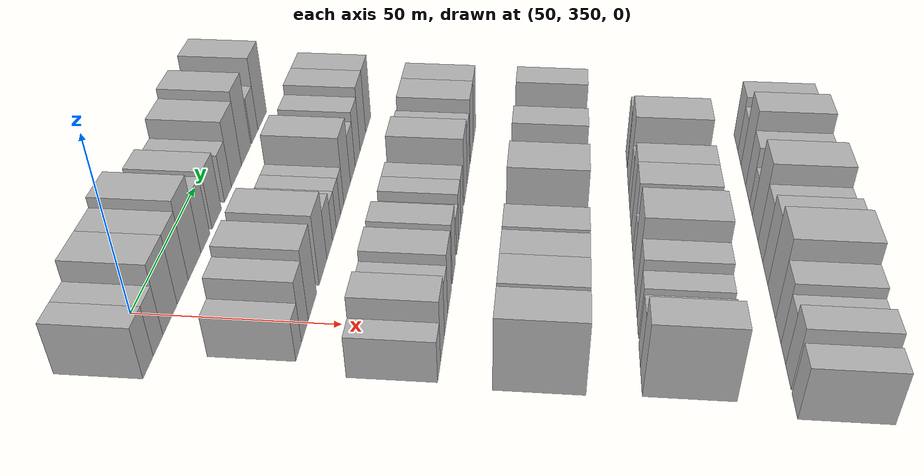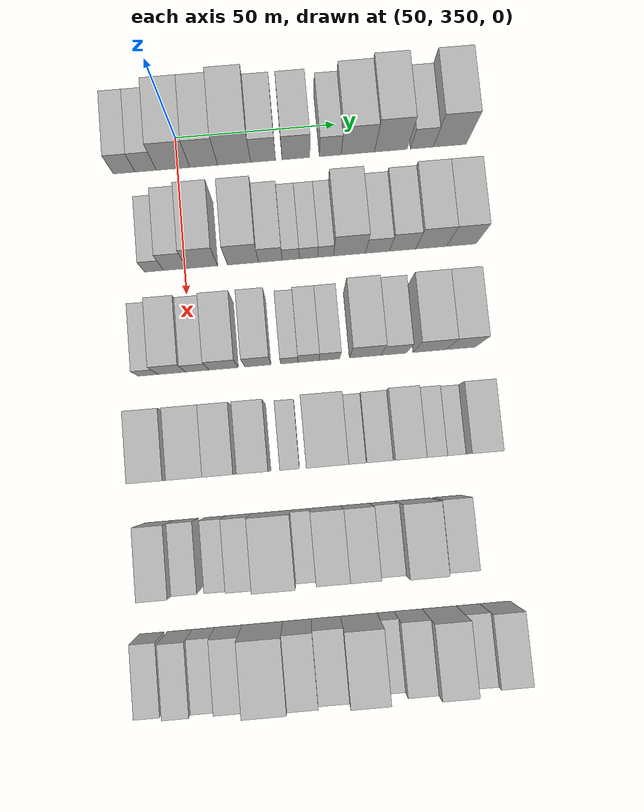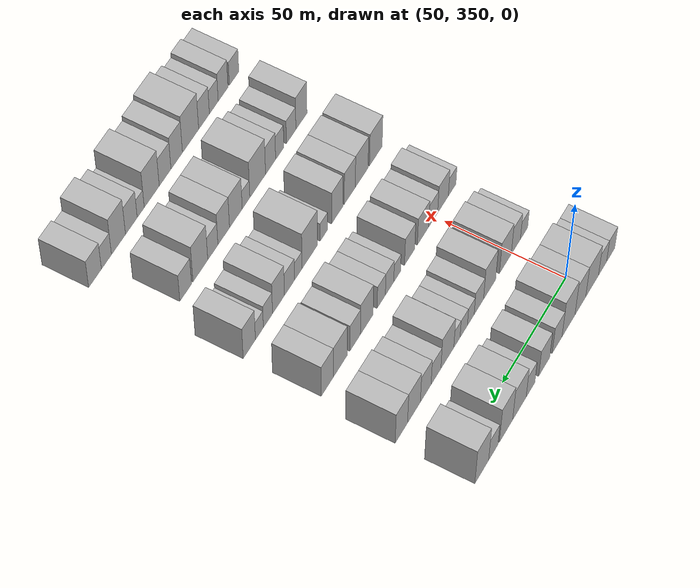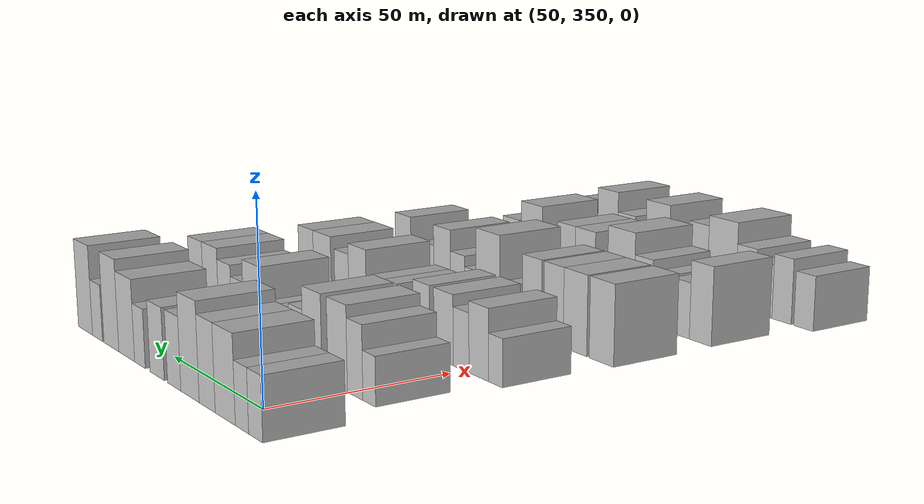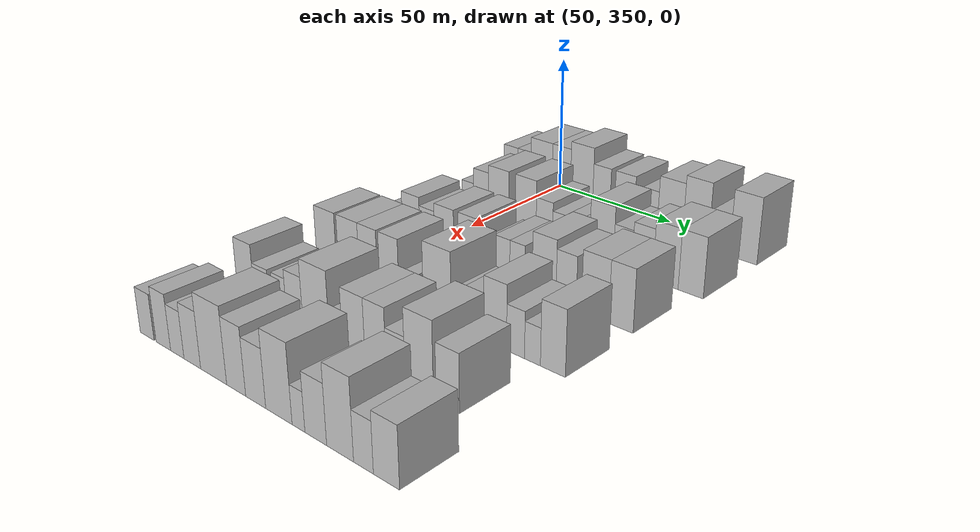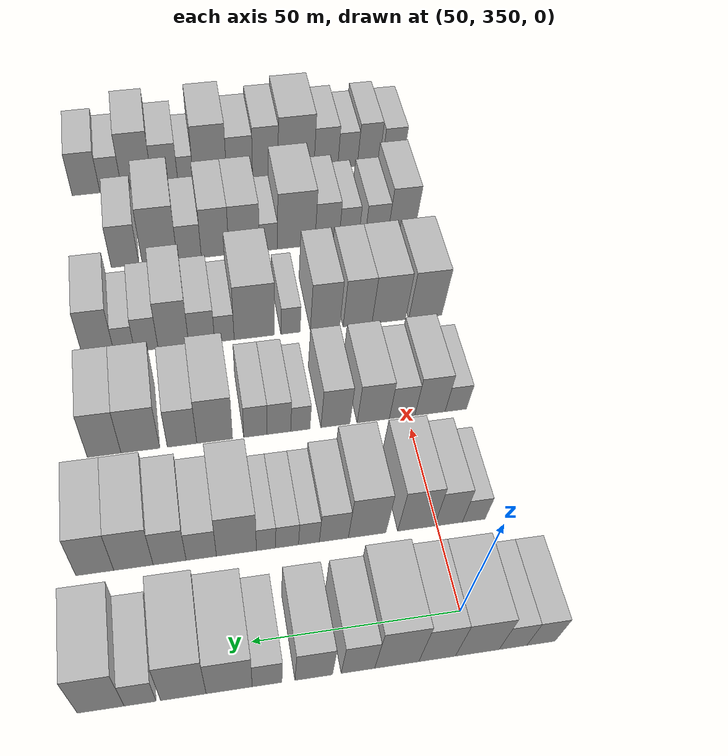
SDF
<sdf version="1.6">
 <world name="default">
  <model name="building_95">
   <static>1</static>
   <pose>50.0000 333.3479 0 0.000000 0.000000 0.000000</pose>
   <link name="link">
    <pose>0 0 7.50 0 0 0</pose>
    <collision name="collision"><geometry><box><size>20.0000 6.8034 15.0000</size></box></geometry></collision>
    <visual name="visual">
     <cast_shadows>0</cast_shadows>
     <geometry><box><size>20.0000 6.8034 15.0000</size></box></geometry>
     <material>
      <script>
       <uri>model://HANNAS_wall/materials/scripts</uri>
       <uri>model://HANNAS_wall/materials/textures</uri>
       <name>vrc/HANNAS_wall</name>
      </script>
     </material>
    </visual>
   </link>
  </model>
  <model name="building_96">
   <static>1</static>
   <pose>50.0000 340.0782 0 0.000000 0.000000 0.000000</pose>
   <link name="link">
    <pose>0 0 7.50 0 0 0</pose>
    <collision name="collision"><geometry><box><size>20.0000 6.6573 15.0000</size></box></geometry></collision>
    <visual name="visual">
     <cast_shadows>0</cast_shadows>
     <geometry><box><size>20.0000 6.6573 15.0000</size></box></geometry>
     <material>
      <script>
       <uri>model://HANNAS_wall/materials/scripts</uri>
       <uri>model://HANNAS_wall/materials/textures</uri>
       <name>vrc/HANNAS_wall</name>
      </script>
     </material>
    </visual>
   </link>
  </model>
  <model name="building_97">
   <static>1</static>
   <pose>50.0000 348.6228 0 0.000000 0.000000 0.000000</pose>
   <link name="link">
    <pose>0 0 10.50 0 0 0</pose>
    <collision name="collision"><geometry><box><size>20.0000 10.4319 21.0000</size></box></geometry></collision>
    <visual name="visual">
     <cast_shadows>0</cast_shadows>
     <geometry><box><size>20.0000 10.4319 21.0000</size></box></geometry>
     <material>
      <script>
       <uri>model://HANNAS_wall/materials/scripts</uri>
       <uri>model://HANNAS_wall/materials/textures</uri>
       <name>vrc/HANNAS_wall</name>
      </script>
     </material>
    </visual>
   </link>
  </model>
  <model name="building_98">
   <static>1</static>
   <pose>50.0000 358.1698 0 0.000000 0.000000 0.000000</pose>
   <link name="link">
    <pose>0 0 10.50 0 0 0</pose>
    <collision name="collision"><geometry><box><size>20.0000 8.6621 21.0000</size></box></geometry></collision>
    <visual name="visual">
     <cast_shadows>0</cast_shadows>
     <geometry><box><size>20.0000 8.6621 21.0000</size></box></geometry>
     <material>
      <script>
       <uri>model://HANNAS_wall/materials/scripts</uri>
       <uri>model://HANNAS_wall/materials/textures</uri>
       <name>vrc/HANNAS_wall</name>
      </script>
     </material>
    </visual>
   </link>
  </model>
  <model name="building_99">
   <static>1</static>
   <pose>50.0000 367.6900 0 0.000000 0.000000 0.000000</pose>
   <link name="link">
    <pose>0 0 12.00 0 0 0</pose>
    <collision name="collision"><geometry><box><size>20.0000 10.3783 24.0000</size></box></geometry></collision>
    <visual name="visual">
     <cast_shadows>0</cast_shadows>
     <geometry><box><size>20.0000 10.3783 24.0000</size></box></geometry>
     <material>
      <script>
       <uri>model://HANNAS_wall/materials/scripts</uri>
       <uri>model://HANNAS_wall/materials/textures</uri>
       <name>vrc/HANNAS_wall</name>
      </script>
     </material>
    </visual>
   </link>
  </model>
  <model name="building_100">
   <static>1</static>
   <pose>50.0000 376.7805 0 0.000000 0.000000 0.000000</pose>
   <link name="link">
    <pose>0 0 9.00 0 0 0</pose>
    <collision name="collision"><geometry><box><size>20.0000 7.8027 18.0000</size></box></geometry></collision>
    <visual name="visual">
     <cast_shadows>0</cast_shadows>
     <geometry><box><size>20.0000 7.8027 18.0000</size></box></geometry>
     <material>
      <script>
       <uri>model://HANNAS_wall/materials/scripts</uri>
       <uri>model://HANNAS_wall/materials/textures</uri>
       <name>vrc/HANNAS_wall</name>
      </script>
     </material>
    </visual>
   </link>
  </model>
  <model name="building_101">
   <static>1</static>
   <pose>50.0000 387.0285 0 0.000000 0.000000 0.000000</pose>
   <link name="link">
    <pose>0 0 9.00 0 0 0</pose>
    <collision name="collision"><geometry><box><size>20.0000 8.6932 18.0000</size></box></geometry></collision>
    <visual name="visual">
     <cast_shadows>0</cast_shadows>
     <geometry><box><size>20.0000 8.6932 18.0000</size></box></geometry>
     <material>
      <script>
       <uri>model://HANNAS_wall/materials/scripts</uri>
       <uri>model://HANNAS_wall/materials/textures</uri>
       <name>vrc/HANNAS_wall</name>
      </script>
     </material>
    </visual>
   </link>
  </model>
  <model name="building_102">
   <static>1</static>
   <pose>50.0000 397.7797 0 0.000000 0.000000 0.000000</pose>
   <link name="link">
    <pose>0 0 7.50 0 0 0</pose>
    <collision name="collision"><geometry><box><size>20.0000 6.8093 15.0000</size></box></geometry></collision>
    <visual name="visual">
     <cast_shadows>0</cast_shadows>
     <geometry><box><size>20.0000 6.8093 15.0000</size></box></geometry>
     <material>
      <script>
       <uri>model://HANNAS_wall/materials/scripts</uri>
       <uri>model://HANNAS_wall/materials/textures</uri>
       <name>vrc/HANNAS_wall</name>
      </script>
     </material>
    </visual>
   </link>
  </model>
  <model name="building_103">
   <static>1</static>
   <pose>50.0000 406.4162 0 0.000000 0.000000 0.000000</pose>
   <link name="link">
    <pose>0 0 10.50 0 0 0</pose>
    <collision name="collision"><geometry><box><size>20.0000 10.4635 21.0000</size></box></geometry></collision>
    <visual name="visual">
     <cast_shadows>0</cast_shadows>
     <geometry><box><size>20.0000 10.4635 21.0000</size></box></geometry>
     <material>
      <script>
       <uri>model://HANNAS_wall/materials/scripts</uri>
       <uri>model://HANNAS_wall/materials/textures</uri>
       <name>vrc/HANNAS_wall</name>
      </script>
     </material>
    </visual>
   </link>
  </model>
  <model name="building_104">
   <static>1</static>
   <pose>50.0000 416.7853 0 0.000000 0.000000 0.000000</pose>
   <link name="link">
    <pose>0 0 12.00 0 0 0</pose>
    <collision name="collision"><geometry><box><size>20.0000 10.2746 24.0000</size></box></geometry></collision>
    <visual name="visual">
     <cast_shadows>0</cast_shadows>
     <geometry><box><size>20.0000 10.2746 24.0000</size></box></geometry>
     <material>
      <script>
       <uri>model://HANNAS_wall/materials/scripts</uri>
       <uri>model://HANNAS_wall/materials/textures</uri>
       <name>vrc/HANNAS_wall</name>
      </script>
     </material>
    </visual>
   </link>
  </model>
  <model name="building_105">
   <static>1</static>
   <pose>50.0000 426.5001 0 0.000000 0.000000 0.000000</pose>
   <link name="link">
    <pose>0 0 7.50 0 0 0</pose>
    <collision name="collision"><geometry><box><size>20.0000 7.1551 15.0000</size></box></geometry></collision>
    <visual name="visual">
     <cast_shadows>0</cast_shadows>
     <geometry><box><size>20.0000 7.1551 15.0000</size></box></geometry>
     <material>
      <script>
       <uri>model://HANNAS_wall/materials/scripts</uri>
       <uri>model://HANNAS_wall/materials/textures</uri>
       <name>vrc/HANNAS_wall</name>
      </script>
     </material>
    </visual>
   </link>
  </model>
  <model name="building_106">
   <static>1</static>
   <pose>50.0000 435.2924 0 0.000000 0.000000 0.000000</pose>
   <link name="link">
    <pose>0 0 12.00 0 0 0</pose>
    <collision name="collision"><geometry><box><size>20.0000 10.4293 24.0000</size></box></geometry></collision>
    <visual name="visual">
     <cast_shadows>0</cast_shadows>
     <geometry><box><size>20.0000 10.4293 24.0000</size></box></geometry>
     <material>
      <script>
       <uri>model://HANNAS_wall/materials/scripts</uri>
       <uri>model://HANNAS_wall/materials/textures</uri>
       <name>vrc/HANNAS_wall</name>
      </script>
     </material>
    </visual>
   </link>
  </model>
  <model name="building_217">
   <static>1</static>
   <pose>82.0000 340.5462 0 0.000000 0.000000 0.000000</pose>
   <link name="link">
    <pose>0 0 6.00 0 0 0</pose>
    <collision name="collision"><geometry><box><size>20.0000 5.8679 12.0000</size></box></geometry></collision>
    <visual name="visual">
     <cast_shadows>0</cast_shadows>
     <geometry><box><size>20.0000 5.8679 12.0000</size></box></geometry>
     <material>
      <script>
       <uri>model://HANNAS_wall/materials/scripts</uri>
       <uri>model://HANNAS_wall/materials/textures</uri>
       <name>vrc/HANNAS_wall</name>
      </script>
     </material>
    </visual>
   </link>
  </model>
  <model name="building_218">
   <static>1</static>
   <pose>82.0000 347.0996 0 0.000000 0.000000 0.000000</pose>
   <link name="link">
    <pose>0 0 9.00 0 0 0</pose>
    <collision name="collision"><geometry><box><size>20.0000 7.2388 18.0000</size></box></geometry></collision>
    <visual name="visual">
     <cast_shadows>0</cast_shadows>
     <geometry><box><size>20.0000 7.2388 18.0000</size></box></geometry>
     <material>
      <script>
       <uri>model://HANNAS_wall/materials/scripts</uri>
       <uri>model://HANNAS_wall/materials/textures</uri>
       <name>vrc/HANNAS_wall</name>
      </script>
     </material>
    </visual>
   </link>
  </model>
  <model name="building_219">
   <static>1</static>
   <pose>82.0000 355.4389 0 0.000000 0.000000 0.000000</pose>
   <link name="link">
    <pose>0 0 10.50 0 0 0</pose>
    <collision name="collision"><geometry><box><size>20.0000 9.4398 21.0000</size></box></geometry></collision>
    <visual name="visual">
     <cast_shadows>0</cast_shadows>
     <geometry><box><size>20.0000 9.4398 21.0000</size></box></geometry>
     <material>
      <script>
       <uri>model://HANNAS_wall/materials/scripts</uri>
       <uri>model://HANNAS_wall/materials/textures</uri>
       <name>vrc/HANNAS_wall</name>
      </script>
     </material>
    </visual>
   </link>
  </model>
  <model name="building_220">
   <static>1</static>
   <pose>82.0000 367.9388 0 0.000000 0.000000 0.000000</pose>
   <link name="link">
    <pose>0 0 10.50 0 0 0</pose>
    <collision name="collision"><geometry><box><size>20.0000 9.5600 21.0000</size></box></geometry></collision>
    <visual name="visual">
     <cast_shadows>0</cast_shadows>
     <geometry><box><size>20.0000 9.5600 21.0000</size></box></geometry>
     <material>
      <script>
       <uri>model://HANNAS_wall/materials/scripts</uri>
       <uri>model://HANNAS_wall/materials/textures</uri>
       <name>vrc/HANNAS_wall</name>
      </script>
     </material>
    </visual>
   </link>
  </model>
  <model name="building_221">
   <static>1</static>
   <pose>82.0000 376.3859 0 0.000000 0.000000 0.000000</pose>
   <link name="link">
    <pose>0 0 7.50 0 0 0</pose>
    <collision name="collision"><geometry><box><size>20.0000 7.3343 15.0000</size></box></geometry></collision>
    <visual name="visual">
     <cast_shadows>0</cast_shadows>
     <geometry><box><size>20.0000 7.3343 15.0000</size></box></geometry>
     <material>
      <script>
       <uri>model://HANNAS_wall/materials/scripts</uri>
       <uri>model://HANNAS_wall/materials/textures</uri>
       <name>vrc/HANNAS_wall</name>
      </script>
     </material>
    </visual>
   </link>
  </model>
  <model name="building_222">
   <static>1</static>
   <pose>82.0000 382.6732 0 0.000000 0.000000 0.000000</pose>
   <link name="link">
    <pose>0 0 6.00 0 0 0</pose>
    <collision name="collision"><geometry><box><size>20.0000 5.2404 12.0000</size></box></geometry></collision>
    <visual name="visual">
     <cast_shadows>0</cast_shadows>
     <geometry><box><size>20.0000 5.2404 12.0000</size></box></geometry>
     <material>
      <script>
       <uri>model://HANNAS_wall/materials/scripts</uri>
       <uri>model://HANNAS_wall/materials/textures</uri>
       <name>vrc/HANNAS_wall</name>
      </script>
     </material>
    </visual>
   </link>
  </model>
  <model name="building_223">
   <static>1</static>
   <pose>82.0000 388.1612 0 0.000000 0.000000 0.000000</pose>
   <link name="link">
    <pose>0 0 6.00 0 0 0</pose>
    <collision name="collision"><geometry><box><size>20.0000 5.7356 12.0000</size></box></geometry></collision>
    <visual name="visual">
     <cast_shadows>0</cast_shadows>
     <geometry><box><size>20.0000 5.7356 12.0000</size></box></geometry>
     <material>
      <script>
       <uri>model://HANNAS_wall/materials/scripts</uri>
       <uri>model://HANNAS_wall/materials/textures</uri>
       <name>vrc/HANNAS_wall</name>
      </script>
     </material>
    </visual>
   </link>
  </model>
  <model name="building_224">
   <static>1</static>
   <pose>82.0000 393.4326 0 0.000000 0.000000 0.000000</pose>
   <link name="link">
    <pose>0 0 6.00 0 0 0</pose>
    <collision name="collision"><geometry><box><size>20.0000 4.8072 12.0000</size></box></geometry></collision>
    <visual name="visual">
     <cast_shadows>0</cast_shadows>
     <geometry><box><size>20.0000 4.8072 12.0000</size></box></geometry>
     <material>
      <script>
       <uri>model://HANNAS_wall/materials/scripts</uri>
       <uri>model://HANNAS_wall/materials/textures</uri>
       <name>vrc/HANNAS_wall</name>
      </script>
     </material>
    </visual>
   </link>
  </model>
  <model name="building_225">
   <static>1</static>
   <pose>82.0000 400.7855 0 0.000000 0.000000 0.000000</pose>
   <link name="link">
    <pose>0 0 10.50 0 0 0</pose>
    <collision name="collision"><geometry><box><size>20.0000 9.8985 21.0000</size></box></geometry></collision>
    <visual name="visual">
     <cast_shadows>0</cast_shadows>
     <geometry><box><size>20.0000 9.8985 21.0000</size></box></geometry>
     <material>
      <script>
       <uri>model://HANNAS_wall/materials/scripts</uri>
       <uri>model://HANNAS_wall/materials/textures</uri>
       <name>vrc/HANNAS_wall</name>
      </script>
     </material>
    </visual>
   </link>
  </model>
  <model name="building_226">
   <static>1</static>
   <pose>82.0000 409.4637 0 0.000000 0.000000 0.000000</pose>
   <link name="link">
    <pose>0 0 7.50 0 0 0</pose>
    <collision name="collision"><geometry><box><size>20.0000 7.4580 15.0000</size></box></geometry></collision>
    <visual name="visual">
     <cast_shadows>0</cast_shadows>
     <geometry><box><size>20.0000 7.4580 15.0000</size></box></geometry>
     <material>
      <script>
       <uri>model://HANNAS_wall/materials/scripts</uri>
       <uri>model://HANNAS_wall/materials/textures</uri>
       <name>vrc/HANNAS_wall</name>
      </script>
     </material>
    </visual>
   </link>
  </model>
  <model name="building_227">
   <static>1</static>
   <pose>82.0000 417.2483 0 0.000000 0.000000 0.000000</pose>
   <link name="link">
    <pose>0 0 9.00 0 0 0</pose>
    <collision name="collision"><geometry><box><size>20.0000 8.1112 18.0000</size></box></geometry></collision>
    <visual name="visual">
     <cast_shadows>0</cast_shadows>
     <geometry><box><size>20.0000 8.1112 18.0000</size></box></geometry>
     <material>
      <script>
       <uri>model://HANNAS_wall/materials/scripts</uri>
       <uri>model://HANNAS_wall/materials/textures</uri>
       <name>vrc/HANNAS_wall</name>
      </script>
     </material>
    </visual>
   </link>
  </model>
  <model name="building_228">
   <static>1</static>
   <pose>82.0000 426.0994 0 0.000000 0.000000 0.000000</pose>
   <link name="link">
    <pose>0 0 10.50 0 0 0</pose>
    <collision name="collision"><geometry><box><size>20.0000 9.5911 21.0000</size></box></geometry></collision>
    <visual name="visual">
     <cast_shadows>0</cast_shadows>
     <geometry><box><size>20.0000 9.5911 21.0000</size></box></geometry>
     <material>
      <script>
       <uri>model://HANNAS_wall/materials/scripts</uri>
       <uri>model://HANNAS_wall/materials/textures</uri>
       <name>vrc/HANNAS_wall</name>
      </script>
     </material>
    </visual>
   </link>
  </model>
  <model name="building_229">
   <static>1</static>
   <pose>82.0000 435.4924 0 0.000000 0.000000 0.000000</pose>
   <link name="link">
    <pose>0 0 10.50 0 0 0</pose>
    <collision name="collision"><geometry><box><size>20.0000 9.1949 21.0000</size></box></geometry></collision>
    <visual name="visual">
     <cast_shadows>0</cast_shadows>
     <geometry><box><size>20.0000 9.1949 21.0000</size></box></geometry>
     <material>
      <script>
       <uri>model://HANNAS_wall/materials/scripts</uri>
       <uri>model://HANNAS_wall/materials/textures</uri>
       <name>vrc/HANNAS_wall</name>
      </script>
     </material>
    </visual>
   </link>
  </model>
  <model name="building_341">
   <static>1</static>
   <pose>114.0000 336.6437 0 0.000000 0.000000 0.000000</pose>
   <link name="link">
    <pose>0 0 6.00 0 0 0</pose>
    <collision name="collision"><geometry><box><size>20.0000 5.9891 12.0000</size></box></geometry></collision>
    <visual name="visual">
     <cast_shadows>0</cast_shadows>
     <geometry><box><size>20.0000 5.9891 12.0000</size></box></geometry>
     <material>
      <script>
       <uri>model://HANNAS_wall/materials/scripts</uri>
       <uri>model://HANNAS_wall/materials/textures</uri>
       <name>vrc/HANNAS_wall</name>
      </script>
     </material>
    </visual>
   </link>
  </model>
  <model name="building_342">
   <static>1</static>
   <pose>114.0000 343.8548 0 0.000000 0.000000 0.000000</pose>
   <link name="link">
    <pose>0 0 9.00 0 0 0</pose>
    <collision name="collision"><geometry><box><size>20.0000 8.4331 18.0000</size></box></geometry></collision>
    <visual name="visual">
     <cast_shadows>0</cast_shadows>
     <geometry><box><size>20.0000 8.4331 18.0000</size></box></geometry>
     <material>
      <script>
       <uri>model://HANNAS_wall/materials/scripts</uri>
       <uri>model://HANNAS_wall/materials/textures</uri>
       <name>vrc/HANNAS_wall</name>
      </script>
     </material>
    </visual>
   </link>
  </model>
  <model name="building_343">
   <static>1</static>
   <pose>114.0000 351.6047 0 0.000000 0.000000 0.000000</pose>
   <link name="link">
    <pose>0 0 7.50 0 0 0</pose>
    <collision name="collision"><geometry><box><size>20.0000 7.0665 15.0000</size></box></geometry></collision>
    <visual name="visual">
     <cast_shadows>0</cast_shadows>
     <geometry><box><size>20.0000 7.0665 15.0000</size></box></geometry>
     <material>
      <script>
       <uri>model://HANNAS_wall/materials/scripts</uri>
       <uri>model://HANNAS_wall/materials/textures</uri>
       <name>vrc/HANNAS_wall</name>
      </script>
     </material>
    </visual>
   </link>
  </model>
  <model name="building_344">
   <static>1</static>
   <pose>114.0000 359.5753 0 0.000000 0.000000 0.000000</pose>
   <link name="link">
    <pose>0 0 9.00 0 0 0</pose>
    <collision name="collision"><geometry><box><size>20.0000 8.8747 18.0000</size></box></geometry></collision>
    <visual name="visual">
     <cast_shadows>0</cast_shadows>
     <geometry><box><size>20.0000 8.8747 18.0000</size></box></geometry>
     <material>
      <script>
       <uri>model://HANNAS_wall/materials/scripts</uri>
       <uri>model://HANNAS_wall/materials/textures</uri>
       <name>vrc/HANNAS_wall</name>
      </script>
     </material>
    </visual>
   </link>
  </model>
  <model name="building_345">
   <static>1</static>
   <pose>114.0000 369.9719 0 0.000000 0.000000 0.000000</pose>
   <link name="link">
    <pose>0 0 9.00 0 0 0</pose>
    <collision name="collision"><geometry><box><size>20.0000 7.9187 18.0000</size></box></geometry></collision>
    <visual name="visual">
     <cast_shadows>0</cast_shadows>
     <geometry><box><size>20.0000 7.9187 18.0000</size></box></geometry>
     <material>
      <script>
       <uri>model://HANNAS_wall/materials/scripts</uri>
       <uri>model://HANNAS_wall/materials/textures</uri>
       <name>vrc/HANNAS_wall</name>
      </script>
     </material>
    </visual>
   </link>
  </model>
  <model name="building_346">
   <static>1</static>
   <pose>114.0000 379.5474 0 0.000000 0.000000 0.000000</pose>
   <link name="link">
    <pose>0 0 6.00 0 0 0</pose>
    <collision name="collision"><geometry><box><size>20.0000 5.2322 12.0000</size></box></geometry></collision>
    <visual name="visual">
     <cast_shadows>0</cast_shadows>
     <geometry><box><size>20.0000 5.2322 12.0000</size></box></geometry>
     <material>
      <script>
       <uri>model://HANNAS_wall/materials/scripts</uri>
       <uri>model://HANNAS_wall/materials/textures</uri>
       <name>vrc/HANNAS_wall</name>
      </script>
     </material>
    </visual>
   </link>
  </model>
  <model name="building_347">
   <static>1</static>
   <pose>114.0000 385.3514 0 0.000000 0.000000 0.000000</pose>
   <link name="link">
    <pose>0 0 7.50 0 0 0</pose>
    <collision name="collision"><geometry><box><size>20.0000 6.3759 15.0000</size></box></geometry></collision>
    <visual name="visual">
     <cast_shadows>0</cast_shadows>
     <geometry><box><size>20.0000 6.3759 15.0000</size></box></geometry>
     <material>
      <script>
       <uri>model://HANNAS_wall/materials/scripts</uri>
       <uri>model://HANNAS_wall/materials/textures</uri>
       <name>vrc/HANNAS_wall</name>
      </script>
     </material>
    </visual>
   </link>
  </model>
  <model name="building_348">
   <static>1</static>
   <pose>114.0000 391.6869 0 0.000000 0.000000 0.000000</pose>
   <link name="link">
    <pose>0 0 7.50 0 0 0</pose>
    <collision name="collision"><geometry><box><size>20.0000 6.2952 15.0000</size></box></geometry></collision>
    <visual name="visual">
     <cast_shadows>0</cast_shadows>
     <geometry><box><size>20.0000 6.2952 15.0000</size></box></geometry>
     <material>
      <script>
       <uri>model://HANNAS_wall/materials/scripts</uri>
       <uri>model://HANNAS_wall/materials/textures</uri>
       <name>vrc/HANNAS_wall</name>
      </script>
     </material>
    </visual>
   </link>
  </model>
  <model name="building_349">
   <static>1</static>
   <pose>114.0000 402.6107 0 0.000000 0.000000 0.000000</pose>
   <link name="link">
    <pose>0 0 10.50 0 0 0</pose>
    <collision name="collision"><geometry><box><size>20.0000 9.5524 21.0000</size></box></geometry></collision>
    <visual name="visual">
     <cast_shadows>0</cast_shadows>
     <geometry><box><size>20.0000 9.5524 21.0000</size></box></geometry>
     <material>
      <script>
       <uri>model://HANNAS_wall/materials/scripts</uri>
       <uri>model://HANNAS_wall/materials/textures</uri>
       <name>vrc/HANNAS_wall</name>
      </script>
     </material>
    </visual>
   </link>
  </model>
  <model name="building_350">
   <static>1</static>
   <pose>114.0000 411.3188 0 0.000000 0.000000 0.000000</pose>
   <link name="link">
    <pose>0 0 9.00 0 0 0</pose>
    <collision name="collision"><geometry><box><size>20.0000 7.8639 18.0000</size></box></geometry></collision>
    <visual name="visual">
     <cast_shadows>0</cast_shadows>
     <geometry><box><size>20.0000 7.8639 18.0000</size></box></geometry>
     <material>
      <script>
       <uri>model://HANNAS_wall/materials/scripts</uri>
       <uri>model://HANNAS_wall/materials/textures</uri>
       <name>vrc/HANNAS_wall</name>
      </script>
     </material>
    </visual>
   </link>
  </model>
  <model name="building_351">
   <static>1</static>
   <pose>114.0000 422.3757 0 0.000000 0.000000 0.000000</pose>
   <link name="link">
    <pose>0 0 10.50 0 0 0</pose>
    <collision name="collision"><geometry><box><size>20.0000 10.2498 21.0000</size></box></geometry></collision>
    <visual name="visual">
     <cast_shadows>0</cast_shadows>
     <geometry><box><size>20.0000 10.2498 21.0000</size></box></geometry>
     <material>
      <script>
       <uri>model://HANNAS_wall/materials/scripts</uri>
       <uri>model://HANNAS_wall/materials/textures</uri>
       <name>vrc/HANNAS_wall</name>
      </script>
     </material>
    </visual>
   </link>
  </model>
  <model name="building_352">
   <static>1</static>
   <pose>114.0000 431.9205 0 0.000000 0.000000 0.000000</pose>
   <link name="link">
    <pose>0 0 10.50 0 0 0</pose>
    <collision name="collision"><geometry><box><size>20.0000 8.8399 21.0000</size></box></geometry></collision>
    <visual name="visual">
     <cast_shadows>0</cast_shadows>
     <geometry><box><size>20.0000 8.8399 21.0000</size></box></geometry>
     <material>
      <script>
       <uri>model://HANNAS_wall/materials/scripts</uri>
       <uri>model://HANNAS_wall/materials/textures</uri>
       <name>vrc/HANNAS_wall</name>
      </script>
     </material>
    </visual>
   </link>
  </model>
  <model name="building_457">
   <static>1</static>
   <pose>146.0000 337.2680 0 0.000000 0.000000 0.000000</pose>
   <link name="link">
    <pose>0 0 10.50 0 0 0</pose>
    <collision name="collision"><geometry><box><size>20.0000 9.8885 21.0000</size></box></geometry></collision>
    <visual name="visual">
     <cast_shadows>0</cast_shadows>
     <geometry><box><size>20.0000 9.8885 21.0000</size></box></geometry>
     <material>
      <script>
       <uri>model://HANNAS_wall/materials/scripts</uri>
       <uri>model://HANNAS_wall/materials/textures</uri>
       <name>vrc/HANNAS_wall</name>
      </script>
     </material>
    </visual>
   </link>
  </model>
  <model name="building_458">
   <static>1</static>
   <pose>146.0000 348.1820 0 0.000000 0.000000 0.000000</pose>
   <link name="link">
    <pose>0 0 10.50 0 0 0</pose>
    <collision name="collision"><geometry><box><size>20.0000 9.9396 21.0000</size></box></geometry></collision>
    <visual name="visual">
     <cast_shadows>0</cast_shadows>
     <geometry><box><size>20.0000 9.9396 21.0000</size></box></geometry>
     <material>
      <script>
       <uri>model://HANNAS_wall/materials/scripts</uri>
       <uri>model://HANNAS_wall/materials/textures</uri>
       <name>vrc/HANNAS_wall</name>
      </script>
     </material>
    </visual>
   </link>
  </model>
  <model name="building_459">
   <static>1</static>
   <pose>146.0000 357.4132 0 0.000000 0.000000 0.000000</pose>
   <link name="link">
    <pose>0 0 10.50 0 0 0</pose>
    <collision name="collision"><geometry><box><size>20.0000 8.5228 21.0000</size></box></geometry></collision>
    <visual name="visual">
     <cast_shadows>0</cast_shadows>
     <geometry><box><size>20.0000 8.5228 21.0000</size></box></geometry>
     <material>
      <script>
       <uri>model://HANNAS_wall/materials/scripts</uri>
       <uri>model://HANNAS_wall/materials/textures</uri>
       <name>vrc/HANNAS_wall</name>
      </script>
     </material>
    </visual>
   </link>
  </model>
  <model name="building_460">
   <static>1</static>
   <pose>146.0000 366.9933 0 0.000000 0.000000 0.000000</pose>
   <link name="link">
    <pose>0 0 10.50 0 0 0</pose>
    <collision name="collision"><geometry><box><size>20.0000 8.6375 21.0000</size></box></geometry></collision>
    <visual name="visual">
     <cast_shadows>0</cast_shadows>
     <geometry><box><size>20.0000 8.6375 21.0000</size></box></geometry>
     <material>
      <script>
       <uri>model://HANNAS_wall/materials/scripts</uri>
       <uri>model://HANNAS_wall/materials/textures</uri>
       <name>vrc/HANNAS_wall</name>
      </script>
     </material>
    </visual>
   </link>
  </model>
  <model name="building_461">
   <static>1</static>
   <pose>146.0000 377.1082 0 0.000000 0.000000 0.000000</pose>
   <link name="link">
    <pose>0 0 6.00 0 0 0</pose>
    <collision name="collision"><geometry><box><size>20.0000 5.5923 12.0000</size></box></geometry></collision>
    <visual name="visual">
     <cast_shadows>0</cast_shadows>
     <geometry><box><size>20.0000 5.5923 12.0000</size></box></geometry>
     <material>
      <script>
       <uri>model://HANNAS_wall/materials/scripts</uri>
       <uri>model://HANNAS_wall/materials/textures</uri>
       <name>vrc/HANNAS_wall</name>
      </script>
     </material>
    </visual>
   </link>
  </model>
  <model name="building_462">
   <static>1</static>
   <pose>146.0000 387.6943 0 0.000000 0.000000 0.000000</pose>
   <link name="link">
    <pose>0 0 12.00 0 0 0</pose>
    <collision name="collision"><geometry><box><size>20.0000 11.5800 24.0000</size></box></geometry></collision>
    <visual name="visual">
     <cast_shadows>0</cast_shadows>
     <geometry><box><size>20.0000 11.5800 24.0000</size></box></geometry>
     <material>
      <script>
       <uri>model://HANNAS_wall/materials/scripts</uri>
       <uri>model://HANNAS_wall/materials/textures</uri>
       <name>vrc/HANNAS_wall</name>
      </script>
     </material>
    </visual>
   </link>
  </model>
  <model name="building_463">
   <static>1</static>
   <pose>146.0000 396.2873 0 0.000000 0.000000 0.000000</pose>
   <link name="link">
    <pose>0 0 6.00 0 0 0</pose>
    <collision name="collision"><geometry><box><size>20.0000 5.6059 12.0000</size></box></geometry></collision>
    <visual name="visual">
     <cast_shadows>0</cast_shadows>
     <geometry><box><size>20.0000 5.6059 12.0000</size></box></geometry>
     <material>
      <script>
       <uri>model://HANNAS_wall/materials/scripts</uri>
       <uri>model://HANNAS_wall/materials/textures</uri>
       <name>vrc/HANNAS_wall</name>
      </script>
     </material>
    </visual>
   </link>
  </model>
  <model name="building_464">
   <static>1</static>
   <pose>146.0000 402.8077 0 0.000000 0.000000 0.000000</pose>
   <link name="link">
    <pose>0 0 7.50 0 0 0</pose>
    <collision name="collision"><geometry><box><size>20.0000 7.4349 15.0000</size></box></geometry></collision>
    <visual name="visual">
     <cast_shadows>0</cast_shadows>
     <geometry><box><size>20.0000 7.4349 15.0000</size></box></geometry>
     <material>
      <script>
       <uri>model://HANNAS_wall/materials/scripts</uri>
       <uri>model://HANNAS_wall/materials/textures</uri>
       <name>vrc/HANNAS_wall</name>
      </script>
     </material>
    </visual>
   </link>
  </model>
  <model name="building_465">
   <static>1</static>
   <pose>146.0000 410.9012 0 0.000000 0.000000 0.000000</pose>
   <link name="link">
    <pose>0 0 10.50 0 0 0</pose>
    <collision name="collision"><geometry><box><size>20.0000 8.7521 21.0000</size></box></geometry></collision>
    <visual name="visual">
     <cast_shadows>0</cast_shadows>
     <geometry><box><size>20.0000 8.7521 21.0000</size></box></geometry>
     <material>
      <script>
       <uri>model://HANNAS_wall/materials/scripts</uri>
       <uri>model://HANNAS_wall/materials/textures</uri>
       <name>vrc/HANNAS_wall</name>
      </script>
     </material>
    </visual>
   </link>
  </model>
  <model name="building_466">
   <static>1</static>
   <pose>146.0000 418.6171 0 0.000000 0.000000 0.000000</pose>
   <link name="link">
    <pose>0 0 7.50 0 0 0</pose>
    <collision name="collision"><geometry><box><size>20.0000 6.6797 15.0000</size></box></geometry></collision>
    <visual name="visual">
     <cast_shadows>0</cast_shadows>
     <geometry><box><size>20.0000 6.6797 15.0000</size></box></geometry>
     <material>
      <script>
       <uri>model://HANNAS_wall/materials/scripts</uri>
       <uri>model://HANNAS_wall/materials/textures</uri>
       <name>vrc/HANNAS_wall</name>
      </script>
     </material>
    </visual>
   </link>
  </model>
  <model name="building_467">
   <static>1</static>
   <pose>146.0000 424.8449 0 0.000000 0.000000 0.000000</pose>
   <link name="link">
    <pose>0 0 6.00 0 0 0</pose>
    <collision name="collision"><geometry><box><size>20.0000 5.7758 12.0000</size></box></geometry></collision>
    <visual name="visual">
     <cast_shadows>0</cast_shadows>
     <geometry><box><size>20.0000 5.7758 12.0000</size></box></geometry>
     <material>
      <script>
       <uri>model://HANNAS_wall/materials/scripts</uri>
       <uri>model://HANNAS_wall/materials/textures</uri>
       <name>vrc/HANNAS_wall</name>
      </script>
     </material>
    </visual>
   </link>
  </model>
  <model name="building_468">
   <static>1</static>
   <pose>146.0000 432.1482 0 0.000000 0.000000 0.000000</pose>
   <link name="link">
    <pose>0 0 10.50 0 0 0</pose>
    <collision name="collision"><geometry><box><size>20.0000 8.8309 21.0000</size></box></geometry></collision>
    <visual name="visual">
     <cast_shadows>0</cast_shadows>
     <geometry><box><size>20.0000 8.8309 21.0000</size></box></geometry>
     <material>
      <script>
       <uri>model://HANNAS_wall/materials/scripts</uri>
       <uri>model://HANNAS_wall/materials/textures</uri>
       <name>vrc/HANNAS_wall</name>
      </script>
     </material>
    </visual>
   </link>
  </model>
  <model name="building_577">
   <static>1</static>
   <pose>178.0000 337.1644 0 0.000000 0.000000 0.000000</pose>
   <link name="link">
    <pose>0 0 10.50 0 0 0</pose>
    <collision name="collision"><geometry><box><size>20.0000 8.5322 21.0000</size></box></geometry></collision>
    <visual name="visual">
     <cast_shadows>0</cast_shadows>
     <geometry><box><size>20.0000 8.5322 21.0000</size></box></geometry>
     <material>
      <script>
       <uri>model://HANNAS_wall/materials/scripts</uri>
       <uri>model://HANNAS_wall/materials/textures</uri>
       <name>vrc/HANNAS_wall</name>
      </script>
     </material>
    </visual>
   </link>
  </model>
  <model name="building_578">
   <static>1</static>
   <pose>178.0000 345.0300 0 0.000000 0.000000 0.000000</pose>
   <link name="link">
    <pose>0 0 7.50 0 0 0</pose>
    <collision name="collision"><geometry><box><size>20.0000 7.1990 15.0000</size></box></geometry></collision>
    <visual name="visual">
     <cast_shadows>0</cast_shadows>
     <geometry><box><size>20.0000 7.1990 15.0000</size></box></geometry>
     <material>
      <script>
       <uri>model://HANNAS_wall/materials/scripts</uri>
       <uri>model://HANNAS_wall/materials/textures</uri>
       <name>vrc/HANNAS_wall</name>
      </script>
     </material>
    </visual>
   </link>
  </model>
  <model name="building_579">
   <static>1</static>
   <pose>178.0000 353.7263 0 0.000000 0.000000 0.000000</pose>
   <link name="link">
    <pose>0 0 7.50 0 0 0</pose>
    <collision name="collision"><geometry><box><size>20.0000 6.1937 15.0000</size></box></geometry></collision>
    <visual name="visual">
     <cast_shadows>0</cast_shadows>
     <geometry><box><size>20.0000 6.1937 15.0000</size></box></geometry>
     <material>
      <script>
       <uri>model://HANNAS_wall/materials/scripts</uri>
       <uri>model://HANNAS_wall/materials/textures</uri>
       <name>vrc/HANNAS_wall</name>
      </script>
     </material>
    </visual>
   </link>
  </model>
  <model name="building_580">
   <static>1</static>
   <pose>178.0000 360.6101 0 0.000000 0.000000 0.000000</pose>
   <link name="link">
    <pose>0 0 9.00 0 0 0</pose>
    <collision name="collision"><geometry><box><size>20.0000 7.5738 18.0000</size></box></geometry></collision>
    <visual name="visual">
     <cast_shadows>0</cast_shadows>
     <geometry><box><size>20.0000 7.5738 18.0000</size></box></geometry>
     <material>
      <script>
       <uri>model://HANNAS_wall/materials/scripts</uri>
       <uri>model://HANNAS_wall/materials/textures</uri>
       <name>vrc/HANNAS_wall</name>
      </script>
     </material>
    </visual>
   </link>
  </model>
  <model name="building_581">
   <static>1</static>
   <pose>178.0000 370.2763 0 0.000000 0.000000 0.000000</pose>
   <link name="link">
    <pose>0 0 12.00 0 0 0</pose>
    <collision name="collision"><geometry><box><size>20.0000 11.7587 24.0000</size></box></geometry></collision>
    <visual name="visual">
     <cast_shadows>0</cast_shadows>
     <geometry><box><size>20.0000 11.7587 24.0000</size></box></geometry>
     <material>
      <script>
       <uri>model://HANNAS_wall/materials/scripts</uri>
       <uri>model://HANNAS_wall/materials/textures</uri>
       <name>vrc/HANNAS_wall</name>
      </script>
     </material>
    </visual>
   </link>
  </model>
  <model name="building_582">
   <static>1</static>
   <pose>178.0000 378.9786 0 0.000000 0.000000 0.000000</pose>
   <link name="link">
    <pose>0 0 6.00 0 0 0</pose>
    <collision name="collision"><geometry><box><size>20.0000 5.6459 12.0000</size></box></geometry></collision>
    <visual name="visual">
     <cast_shadows>0</cast_shadows>
     <geometry><box><size>20.0000 5.6459 12.0000</size></box></geometry>
     <material>
      <script>
       <uri>model://HANNAS_wall/materials/scripts</uri>
       <uri>model://HANNAS_wall/materials/textures</uri>
       <name>vrc/HANNAS_wall</name>
      </script>
     </material>
    </visual>
   </link>
  </model>
  <model name="building_583">
   <static>1</static>
   <pose>178.0000 386.4733 0 0.000000 0.000000 0.000000</pose>
   <link name="link">
    <pose>0 0 10.50 0 0 0</pose>
    <collision name="collision"><geometry><box><size>20.0000 9.3436 21.0000</size></box></geometry></collision>
    <visual name="visual">
     <cast_shadows>0</cast_shadows>
     <geometry><box><size>20.0000 9.3436 21.0000</size></box></geometry>
     <material>
      <script>
       <uri>model://HANNAS_wall/materials/scripts</uri>
       <uri>model://HANNAS_wall/materials/textures</uri>
       <name>vrc/HANNAS_wall</name>
      </script>
     </material>
    </visual>
   </link>
  </model>
  <model name="building_584">
   <static>1</static>
   <pose>178.0000 395.3931 0 0.000000 0.000000 0.000000</pose>
   <link name="link">
    <pose>0 0 10.50 0 0 0</pose>
    <collision name="collision"><geometry><box><size>20.0000 8.4961 21.0000</size></box></geometry></collision>
    <visual name="visual">
     <cast_shadows>0</cast_shadows>
     <geometry><box><size>20.0000 8.4961 21.0000</size></box></geometry>
     <material>
      <script>
       <uri>model://HANNAS_wall/materials/scripts</uri>
       <uri>model://HANNAS_wall/materials/textures</uri>
       <name>vrc/HANNAS_wall</name>
      </script>
     </material>
    </visual>
   </link>
  </model>
  <model name="building_585">
   <static>1</static>
   <pose>178.0000 403.3357 0 0.000000 0.000000 0.000000</pose>
   <link name="link">
    <pose>0 0 7.50 0 0 0</pose>
    <collision name="collision"><geometry><box><size>20.0000 7.3891 15.0000</size></box></geometry></collision>
    <visual name="visual">
     <cast_shadows>0</cast_shadows>
     <geometry><box><size>20.0000 7.3891 15.0000</size></box></geometry>
     <material>
      <script>
       <uri>model://HANNAS_wall/materials/scripts</uri>
       <uri>model://HANNAS_wall/materials/textures</uri>
       <name>vrc/HANNAS_wall</name>
      </script>
     </material>
    </visual>
   </link>
  </model>
  <model name="building_586">
   <static>1</static>
   <pose>178.0000 412.3747 0 0.000000 0.000000 0.000000</pose>
   <link name="link">
    <pose>0 0 12.00 0 0 0</pose>
    <collision name="collision"><geometry><box><size>20.0000 10.6888 24.0000</size></box></geometry></collision>
    <visual name="visual">
     <cast_shadows>0</cast_shadows>
     <geometry><box><size>20.0000 10.6888 24.0000</size></box></geometry>
     <material>
      <script>
       <uri>model://HANNAS_wall/materials/scripts</uri>
       <uri>model://HANNAS_wall/materials/textures</uri>
       <name>vrc/HANNAS_wall</name>
      </script>
     </material>
    </visual>
   </link>
  </model>
  <model name="building_587">
   <static>1</static>
   <pose>178.0000 422.9230 0 0.000000 0.000000 0.000000</pose>
   <link name="link">
    <pose>0 0 9.00 0 0 0</pose>
    <collision name="collision"><geometry><box><size>20.0000 8.4079 18.0000</size></box></geometry></collision>
    <visual name="visual">
     <cast_shadows>0</cast_shadows>
     <geometry><box><size>20.0000 8.4079 18.0000</size></box></geometry>
     <material>
      <script>
       <uri>model://HANNAS_wall/materials/scripts</uri>
       <uri>model://HANNAS_wall/materials/textures</uri>
       <name>vrc/HANNAS_wall</name>
      </script>
     </material>
    </visual>
   </link>
  </model>
  <model name="building_699">
   <static>1</static>
   <pose>210.0000 332.5561 0 0.000000 0.000000 0.000000</pose>
   <link name="link">
    <pose>0 0 7.50 0 0 0</pose>
    <collision name="collision"><geometry><box><size>20.0000 7.2216 15.0000</size></box></geometry></collision>
    <visual name="visual">
     <cast_shadows>0</cast_shadows>
     <geometry><box><size>20.0000 7.2216 15.0000</size></box></geometry>
     <material>
      <script>
       <uri>model://HANNAS_wall/materials/scripts</uri>
       <uri>model://HANNAS_wall/materials/textures</uri>
       <name>vrc/HANNAS_wall</name>
      </script>
     </material>
    </visual>
   </link>
  </model>
  <model name="building_700">
   <static>1</static>
   <pose>210.0000 340.8578 0 0.000000 0.000000 0.000000</pose>
   <link name="link">
    <pose>0 0 9.00 0 0 0</pose>
    <collision name="collision"><geometry><box><size>20.0000 7.3819 18.0000</size></box></geometry></collision>
    <visual name="visual">
     <cast_shadows>0</cast_shadows>
     <geometry><box><size>20.0000 7.3819 18.0000</size></box></geometry>
     <material>
      <script>
       <uri>model://HANNAS_wall/materials/scripts</uri>
       <uri>model://HANNAS_wall/materials/textures</uri>
       <name>vrc/HANNAS_wall</name>
      </script>
     </material>
    </visual>
   </link>
  </model>
  <model name="building_701">
   <static>1</static>
   <pose>210.0000 347.8438 0 0.000000 0.000000 0.000000</pose>
   <link name="link">
    <pose>0 0 7.50 0 0 0</pose>
    <collision name="collision"><geometry><box><size>20.0000 6.5900 15.0000</size></box></geometry></collision>
    <visual name="visual">
     <cast_shadows>0</cast_shadows>
     <geometry><box><size>20.0000 6.5900 15.0000</size></box></geometry>
     <material>
      <script>
       <uri>model://HANNAS_wall/materials/scripts</uri>
       <uri>model://HANNAS_wall/materials/textures</uri>
       <name>vrc/HANNAS_wall</name>
      </script>
     </material>
    </visual>
   </link>
  </model>
  <model name="building_702">
   <static>1</static>
   <pose>210.0000 355.1390 0 0.000000 0.000000 0.000000</pose>
   <link name="link">
    <pose>0 0 9.00 0 0 0</pose>
    <collision name="collision"><geometry><box><size>20.0000 8.0005 18.0000</size></box></geometry></collision>
    <visual name="visual">
     <cast_shadows>0</cast_shadows>
     <geometry><box><size>20.0000 8.0005 18.0000</size></box></geometry>
     <material>
      <script>
       <uri>model://HANNAS_wall/materials/scripts</uri>
       <uri>model://HANNAS_wall/materials/textures</uri>
       <name>vrc/HANNAS_wall</name>
      </script>
     </material>
    </visual>
   </link>
  </model>
  <model name="building_703">
   <static>1</static>
   <pose>210.0000 365.1272 0 0.000000 0.000000 0.000000</pose>
   <link name="link">
    <pose>0 0 12.00 0 0 0</pose>
    <collision name="collision"><geometry><box><size>20.0000 11.9760 24.0000</size></box></geometry></collision>
    <visual name="visual">
     <cast_shadows>0</cast_shadows>
     <geometry><box><size>20.0000 11.9760 24.0000</size></box></geometry>
     <material>
      <script>
       <uri>model://HANNAS_wall/materials/scripts</uri>
       <uri>model://HANNAS_wall/materials/textures</uri>
       <name>vrc/HANNAS_wall</name>
      </script>
     </material>
    </visual>
   </link>
  </model>
  <model name="building_704">
   <static>1</static>
   <pose>210.0000 375.3264 0 0.000000 0.000000 0.000000</pose>
   <link name="link">
    <pose>0 0 10.50 0 0 0</pose>
    <collision name="collision"><geometry><box><size>20.0000 8.4224 21.0000</size></box></geometry></collision>
    <visual name="visual">
     <cast_shadows>0</cast_shadows>
     <geometry><box><size>20.0000 8.4224 21.0000</size></box></geometry>
     <material>
      <script>
       <uri>model://HANNAS_wall/materials/scripts</uri>
       <uri>model://HANNAS_wall/materials/textures</uri>
       <name>vrc/HANNAS_wall</name>
      </script>
     </material>
    </visual>
   </link>
  </model>
  <model name="building_705">
   <static>1</static>
   <pose>210.0000 383.8123 0 0.000000 0.000000 0.000000</pose>
   <link name="link">
    <pose>0 0 9.00 0 0 0</pose>
    <collision name="collision"><geometry><box><size>20.0000 8.5495 18.0000</size></box></geometry></collision>
    <visual name="visual">
     <cast_shadows>0</cast_shadows>
     <geometry><box><size>20.0000 8.5495 18.0000</size></box></geometry>
     <material>
      <script>
       <uri>model://HANNAS_wall/materials/scripts</uri>
       <uri>model://HANNAS_wall/materials/textures</uri>
       <name>vrc/HANNAS_wall</name>
      </script>
     </material>
    </visual>
   </link>
  </model>
  <model name="building_706">
   <static>1</static>
   <pose>210.0000 393.4975 0 0.000000 0.000000 0.000000</pose>
   <link name="link">
    <pose>0 0 12.00 0 0 0</pose>
    <collision name="collision"><geometry><box><size>20.0000 10.8208 24.0000</size></box></geometry></collision>
    <visual name="visual">
     <cast_shadows>0</cast_shadows>
     <geometry><box><size>20.0000 10.8208 24.0000</size></box></geometry>
     <material>
      <script>
       <uri>model://HANNAS_wall/materials/scripts</uri>
       <uri>model://HANNAS_wall/materials/textures</uri>
       <name>vrc/HANNAS_wall</name>
      </script>
     </material>
    </visual>
   </link>
  </model>
  <model name="building_707">
   <static>1</static>
   <pose>210.0000 401.4373 0 0.000000 0.000000 0.000000</pose>
   <link name="link">
    <pose>0 0 6.00 0 0 0</pose>
    <collision name="collision"><geometry><box><size>20.0000 5.0588 12.0000</size></box></geometry></collision>
    <visual name="visual">
     <cast_shadows>0</cast_shadows>
     <geometry><box><size>20.0000 5.0588 12.0000</size></box></geometry>
     <material>
      <script>
       <uri>model://HANNAS_wall/materials/scripts</uri>
       <uri>model://HANNAS_wall/materials/textures</uri>
       <name>vrc/HANNAS_wall</name>
      </script>
     </material>
    </visual>
   </link>
  </model>
  <model name="building_708">
   <static>1</static>
   <pose>210.0000 408.1422 0 0.000000 0.000000 0.000000</pose>
   <link name="link">
    <pose>0 0 9.00 0 0 0</pose>
    <collision name="collision"><geometry><box><size>20.0000 8.3512 18.0000</size></box></geometry></collision>
    <visual name="visual">
     <cast_shadows>0</cast_shadows>
     <geometry><box><size>20.0000 8.3512 18.0000</size></box></geometry>
     <material>
      <script>
       <uri>model://HANNAS_wall/materials/scripts</uri>
       <uri>model://HANNAS_wall/materials/textures</uri>
       <name>vrc/HANNAS_wall</name>
      </script>
     </material>
    </visual>
   </link>
  </model>
  <model name="building_709">
   <static>1</static>
   <pose>210.0000 417.2888 0 0.000000 0.000000 0.000000</pose>
   <link name="link">
    <pose>0 0 12.00 0 0 0</pose>
    <collision name="collision"><geometry><box><size>20.0000 9.9420 24.0000</size></box></geometry></collision>
    <visual name="visual">
     <cast_shadows>0</cast_shadows>
     <geometry><box><size>20.0000 9.9420 24.0000</size></box></geometry>
     <material>
      <script>
       <uri>model://HANNAS_wall/materials/scripts</uri>
       <uri>model://HANNAS_wall/materials/textures</uri>
       <name>vrc/HANNAS_wall</name>
      </script>
     </material>
    </visual>
   </link>
  </model>
  <model name="building_710">
   <static>1</static>
   <pose>210.0000 425.7801 0 0.000000 0.000000 0.000000</pose>
   <link name="link">
    <pose>0 0 7.50 0 0 0</pose>
    <collision name="collision"><geometry><box><size>20.0000 7.0408 15.0000</size></box></geometry></collision>
    <visual name="visual">
     <cast_shadows>0</cast_shadows>
     <geometry><box><size>20.0000 7.0408 15.0000</size></box></geometry>
     <material>
      <script>
       <uri>model://HANNAS_wall/materials/scripts</uri>
       <uri>model://HANNAS_wall/materials/textures</uri>
       <name>vrc/HANNAS_wall</name>
      </script>
     </material>
    </visual>
   </link>
  </model>
  <model name="building_711">
   <static>1</static>
   <pose>210.0000 433.7762 0 0.000000 0.000000 0.000000</pose>
   <link name="link">
    <pose>0 0 9.00 0 0 0</pose>
    <collision name="collision"><geometry><box><size>20.0000 8.9514 18.0000</size></box></geometry></collision>
    <visual name="visual">
     <cast_shadows>0</cast_shadows>
     <geometry><box><size>20.0000 8.9514 18.0000</size></box></geometry>
     <material>
      <script>
       <uri>model://HANNAS_wall/materials/scripts</uri>
       <uri>model://HANNAS_wall/materials/textures</uri>
       <name>vrc/HANNAS_wall</name>
      </script>
     </material>
    </visual>
   </link>
  </model>
 </world>
</sdf>
